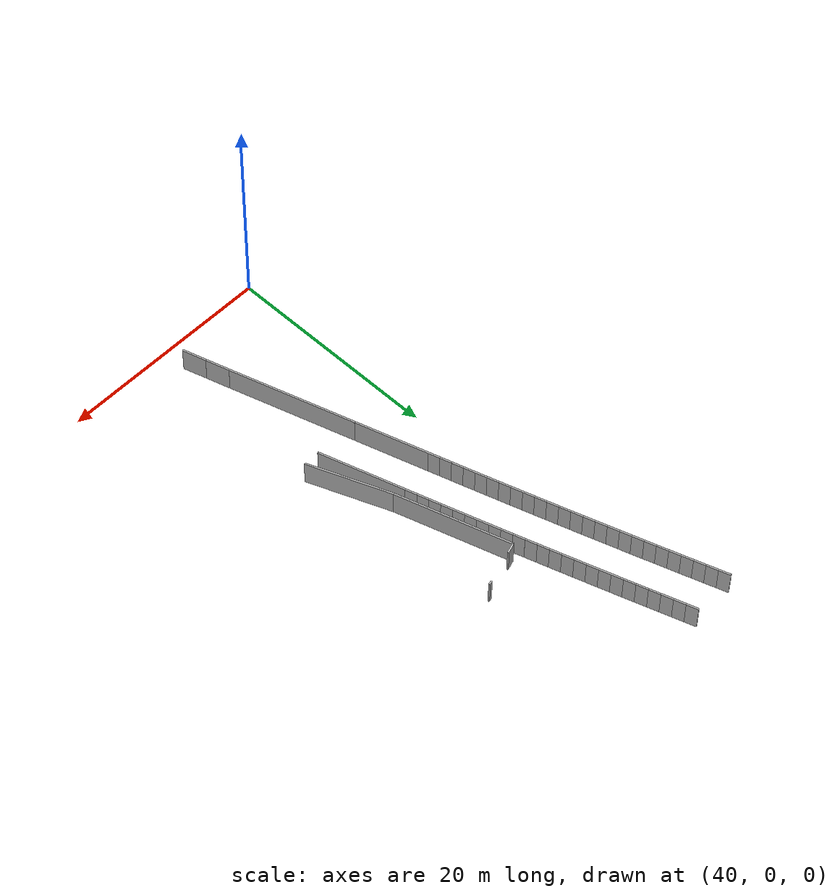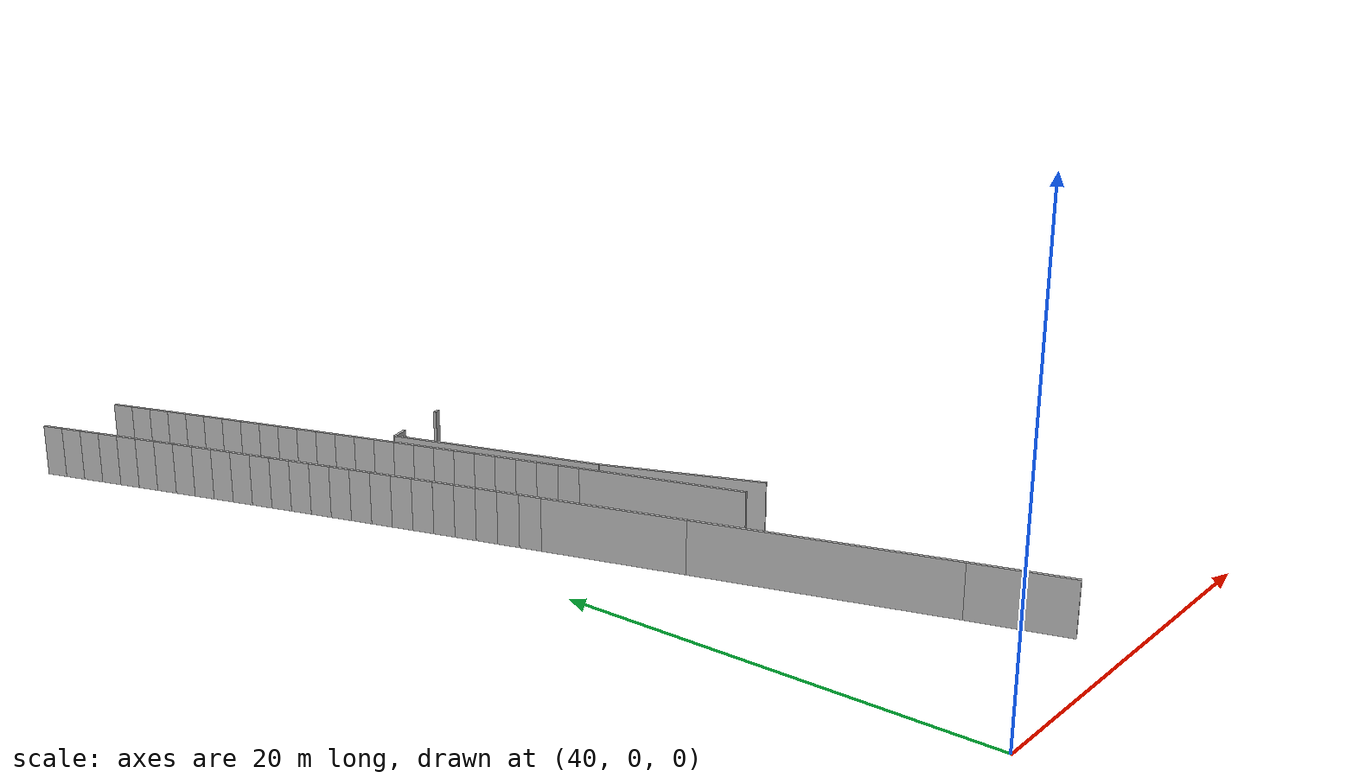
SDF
<?xml version="1.0" ?>
<sdf version="1.6">
  <model name="sps_4530">
    <pose frame="">0 0 0 0 -0 0</pose>
    <static>1</static>
    <self_collide>0</self_collide>
    <allow_auto_disable>0</allow_auto_disable>
    <link name="Wall153">
      <kinematic>0</kinematic>
      <gravity>1</gravity>
      <self_collide>0</self_collide>
      <collision name="collision">
        <geometry>
          <box>
            <size>0.94426 0.15 2.5</size>
          </box>
        </geometry>
        <pose frame="">0 0 0 0 -0 0</pose>
      </collision>
      <visual name="visual">
        <geometry>
          <box>
            <size>0.94426 0.15 2.5</size>
          </box>
        </geometry>
        <pose frame="">0 0 0 0 -0 0</pose>
        <cast_shadows>1</cast_shadows>
        <transparency>0.0</transparency>
      </visual>
      <pose frame="">45.4233 35.6831 1.25 0 -0 0.298855</pose>
    </link>
    <link name="Wall154">
      <kinematic>0</kinematic>
      <gravity>1</gravity>
      <self_collide>0</self_collide>
      <collision name="collision">
        <geometry>
          <box>
            <size>11.8573 0.15 2.5</size>
          </box>
        </geometry>
        <pose frame="">0 0 0 0 -0 0</pose>
      </collision>
      <visual name="visual">
        <geometry>
          <box>
            <size>11.8573 0.15 2.5</size>
          </box>
        </geometry>
        <pose frame="">0 0 0 0 -0 0</pose>
        <cast_shadows>1</cast_shadows>
        <transparency>0.0</transparency>
      </visual>
      <pose frame="">46.9025 12.2199 1.25 0 -0 1.86542</pose>
    </link>
    <link name="Wall155">
      <kinematic>0</kinematic>
      <gravity>1</gravity>
      <self_collide>0</self_collide>
      <collision name="collision">
        <geometry>
          <box>
            <size>6.81214 0.15 2.5</size>
          </box>
        </geometry>
        <pose frame="">0 0 0 0 -0 0</pose>
      </collision>
      <visual name="visual">
        <geometry>
          <box>
            <size>6.81214 0.15 2.5</size>
          </box>
        </geometry>
        <pose frame="">0 0 0 0 -0 0</pose>
        <cast_shadows>1</cast_shadows>
        <transparency>0.0</transparency>
      </visual>
      <pose frame="">44.1919 21.1524 1.25 0 -0 1.86542</pose>
    </link>
    <link name="Wall259">
      <kinematic>0</kinematic>
      <gravity>1</gravity>
      <self_collide>0</self_collide>
      <collision name="collision">
        <geometry>
          <box>
            <size>10.7821 0.15 2.5</size>
          </box>
        </geometry>
        <pose frame="">0 0 0 0 -0 0</pose>
      </collision>
      <visual name="visual">
        <geometry>
          <box>
            <size>10.7821 0.15 2.5</size>
          </box>
        </geometry>
        <pose frame="">0 0 0 0 -0 0</pose>
        <cast_shadows>1</cast_shadows>
        <transparency>0.0</transparency>
      </visual>
      <pose frame="">46.557 30.3913 1.25 0 0 -1.2724</pose>
    </link>
    <link name="Wall581">
      <kinematic>0</kinematic>
      <gravity>1</gravity>
      <self_collide>0</self_collide>
      <collision name="collision">
        <geometry>
          <box>
            <size>0.371875 0.15 2.5</size>
          </box>
        </geometry>
        <pose frame="">0 0 0 0 -0 0</pose>
      </collision>
      <visual name="visual">
        <geometry>
          <box>
            <size>0.371875 0.15 2.5</size>
          </box>
        </geometry>
        <pose frame="">0 0 0 0 -0 0</pose>
        <cast_shadows>1</cast_shadows>
        <transparency>0.0</transparency>
      </visual>
      <pose frame="">48.9997 36.7832 1.25 0 -0 0.298704</pose>
    </link>
    <link name="Wall582">
      <kinematic>0</kinematic>
      <gravity>1</gravity>
      <self_collide>0</self_collide>
      <collision name="collision">
        <geometry>
          <box>
            <size>8.06476 0.15 2.5</size>
          </box>
        </geometry>
        <pose frame="">0 0 0 0 -0 0</pose>
      </collision>
      <visual name="visual">
        <geometry>
          <box>
            <size>8.06476 0.15 2.5</size>
          </box>
        </geometry>
        <pose frame="">0 0 0 0 -0 0</pose>
        <cast_shadows>1</cast_shadows>
        <transparency>0.0</transparency>
      </visual>
      <pose frame="">48.3365 21.7518 1.25 0 0 -1.27624</pose>
    </link>
    <link name="Wall661">
      <kinematic>0</kinematic>
      <gravity>1</gravity>
      <self_collide>0</self_collide>
      <collision name="collision">
        <geometry>
          <box>
            <size>7.90182 0.15 2.5</size>
          </box>
        </geometry>
        <pose frame="">0 0 0 0 -0 0</pose>
      </collision>
      <visual name="visual">
        <geometry>
          <box>
            <size>7.90182 0.15 2.5</size>
          </box>
        </geometry>
        <pose frame="">0 0 0 0 -0 0</pose>
        <cast_shadows>1</cast_shadows>
        <transparency>0.0</transparency>
      </visual>
      <pose frame="">49.5982 21.5658 1.25 0 0 -1.19328</pose>
    </link>
    <link name="Wall6393">
      <kinematic>0</kinematic>
      <gravity>1</gravity>
      <self_collide>0</self_collide>
      <collision name="collision">
        <geometry>
          <box>
            <size>2.24457 0.15 2.5</size>
          </box>
        </geometry>
        <pose frame="">0 0 0 0 -0 0</pose>
      </collision>
      <visual name="visual">
        <geometry>
          <box>
            <size>2.24457 0.15 2.5</size>
          </box>
        </geometry>
        <pose frame="">0 0 0 0 -0 0</pose>
        <cast_shadows>1</cast_shadows>
        <transparency>0.0</transparency>
      </visual>
      <pose frame="">49.5833 3.31898 1.25 0 -0 1.85808</pose>
    </link>
    <link name="Wall6394">
      <kinematic>0</kinematic>
      <gravity>1</gravity>
      <self_collide>0</self_collide>
      <collision name="collision">
        <geometry>
          <box>
            <size>2.24496 0.15 2.5</size>
          </box>
        </geometry>
        <pose frame="">0 0 0 0 -0 0</pose>
      </collision>
      <visual name="visual">
        <geometry>
          <box>
            <size>2.24496 0.15 2.5</size>
          </box>
        </geometry>
        <pose frame="">0 0 0 0 -0 0</pose>
        <cast_shadows>1</cast_shadows>
        <transparency>0.0</transparency>
      </visual>
      <pose frame="">48.9447 5.47099 1.25 0 -0 1.86046</pose>
    </link>
    <link name="Wall8200">
      <kinematic>0</kinematic>
      <gravity>1</gravity>
      <self_collide>0</self_collide>
      <collision name="collision">
        <geometry>
          <box>
            <size>1.08068 0.15 2.5</size>
          </box>
        </geometry>
        <pose frame="">0 0 0 0 -0 0</pose>
      </collision>
      <visual name="visual">
        <geometry>
          <box>
            <size>1.08068 0.15 2.5</size>
          </box>
        </geometry>
        <pose frame="">0 0 0 0 -0 0</pose>
        <cast_shadows>1</cast_shadows>
        <transparency>0.0</transparency>
      </visual>
      <pose frame="">47.0091 26.1276 1.25 0 -0 1.86522</pose>
    </link>
    <link name="Wall8201">
      <kinematic>0</kinematic>
      <gravity>1</gravity>
      <self_collide>0</self_collide>
      <collision name="collision">
        <geometry>
          <box>
            <size>1.08069 0.15 2.5</size>
          </box>
        </geometry>
        <pose frame="">0 0 0 0 -0 0</pose>
      </collision>
      <visual name="visual">
        <geometry>
          <box>
            <size>1.08069 0.15 2.5</size>
          </box>
        </geometry>
        <pose frame="">0 0 0 0 -0 0</pose>
        <cast_shadows>1</cast_shadows>
        <transparency>0.0</transparency>
      </visual>
      <pose frame="">46.6948 27.1616 1.25 0 -0 1.8664</pose>
    </link>
    <link name="Wall8202">
      <kinematic>0</kinematic>
      <gravity>1</gravity>
      <self_collide>0</self_collide>
      <collision name="collision">
        <geometry>
          <box>
            <size>1.08062 0.15 2.5</size>
          </box>
        </geometry>
        <pose frame="">0 0 0 0 -0 0</pose>
      </collision>
      <visual name="visual">
        <geometry>
          <box>
            <size>1.08062 0.15 2.5</size>
          </box>
        </geometry>
        <pose frame="">0 0 0 0 -0 0</pose>
        <cast_shadows>1</cast_shadows>
        <transparency>0.0</transparency>
      </visual>
      <pose frame="">46.3794 28.1952 1.25 0 -0 1.86754</pose>
    </link>
    <link name="Wall8203">
      <kinematic>0</kinematic>
      <gravity>1</gravity>
      <self_collide>0</self_collide>
      <collision name="collision">
        <geometry>
          <box>
            <size>1.08074 0.15 2.5</size>
          </box>
        </geometry>
        <pose frame="">0 0 0 0 -0 0</pose>
      </collision>
      <visual name="visual">
        <geometry>
          <box>
            <size>1.08074 0.15 2.5</size>
          </box>
        </geometry>
        <pose frame="">0 0 0 0 -0 0</pose>
        <cast_shadows>1</cast_shadows>
        <transparency>0.0</transparency>
      </visual>
      <pose frame="">46.0629 29.2285 1.25 0 -0 1.86851</pose>
    </link>
    <link name="Wall8204">
      <kinematic>0</kinematic>
      <gravity>1</gravity>
      <self_collide>0</self_collide>
      <collision name="collision">
        <geometry>
          <box>
            <size>1.08074 0.15 2.5</size>
          </box>
        </geometry>
        <pose frame="">0 0 0 0 -0 0</pose>
      </collision>
      <visual name="visual">
        <geometry>
          <box>
            <size>1.08074 0.15 2.5</size>
          </box>
        </geometry>
        <pose frame="">0 0 0 0 -0 0</pose>
        <cast_shadows>1</cast_shadows>
        <transparency>0.0</transparency>
      </visual>
      <pose frame="">45.7454 30.2615 1.25 0 -0 1.86963</pose>
    </link>
    <link name="Wall8205">
      <kinematic>0</kinematic>
      <gravity>1</gravity>
      <self_collide>0</self_collide>
      <collision name="collision">
        <geometry>
          <box>
            <size>1.08063 0.15 2.5</size>
          </box>
        </geometry>
        <pose frame="">0 0 0 0 -0 0</pose>
      </collision>
      <visual name="visual">
        <geometry>
          <box>
            <size>1.08063 0.15 2.5</size>
          </box>
        </geometry>
        <pose frame="">0 0 0 0 -0 0</pose>
        <cast_shadows>1</cast_shadows>
        <transparency>0.0</transparency>
      </visual>
      <pose frame="">45.4267 31.2941 1.25 0 -0 1.87067</pose>
    </link>
    <link name="Wall8206">
      <kinematic>0</kinematic>
      <gravity>1</gravity>
      <self_collide>0</self_collide>
      <collision name="collision">
        <geometry>
          <box>
            <size>1.08064 0.15 2.5</size>
          </box>
        </geometry>
        <pose frame="">0 0 0 0 -0 0</pose>
      </collision>
      <visual name="visual">
        <geometry>
          <box>
            <size>1.08064 0.15 2.5</size>
          </box>
        </geometry>
        <pose frame="">0 0 0 0 -0 0</pose>
        <cast_shadows>1</cast_shadows>
        <transparency>0.0</transparency>
      </visual>
      <pose frame="">45.1067 32.3263 1.25 0 -0 1.87202</pose>
    </link>
    <link name="Wall8207">
      <kinematic>0</kinematic>
      <gravity>1</gravity>
      <self_collide>0</self_collide>
      <collision name="collision">
        <geometry>
          <box>
            <size>1.08076 0.15 2.5</size>
          </box>
        </geometry>
        <pose frame="">0 0 0 0 -0 0</pose>
      </collision>
      <visual name="visual">
        <geometry>
          <box>
            <size>1.08076 0.15 2.5</size>
          </box>
        </geometry>
        <pose frame="">0 0 0 0 -0 0</pose>
        <cast_shadows>1</cast_shadows>
        <transparency>0.0</transparency>
      </visual>
      <pose frame="">44.7856 33.3582 1.25 0 -0 1.87294</pose>
    </link>
    <link name="Wall8208">
      <kinematic>0</kinematic>
      <gravity>1</gravity>
      <self_collide>0</self_collide>
      <collision name="collision">
        <geometry>
          <box>
            <size>1.08077 0.15 2.5</size>
          </box>
        </geometry>
        <pose frame="">0 0 0 0 -0 0</pose>
      </collision>
      <visual name="visual">
        <geometry>
          <box>
            <size>1.08077 0.15 2.5</size>
          </box>
        </geometry>
        <pose frame="">0 0 0 0 -0 0</pose>
        <cast_shadows>1</cast_shadows>
        <transparency>0.0</transparency>
      </visual>
      <pose frame="">44.4633 34.3898 1.25 0 -0 1.87429</pose>
    </link>
    <link name="Wall8209">
      <kinematic>0</kinematic>
      <gravity>1</gravity>
      <self_collide>0</self_collide>
      <collision name="collision">
        <geometry>
          <box>
            <size>1.08071 0.15 2.5</size>
          </box>
        </geometry>
        <pose frame="">0 0 0 0 -0 0</pose>
      </collision>
      <visual name="visual">
        <geometry>
          <box>
            <size>1.08071 0.15 2.5</size>
          </box>
        </geometry>
        <pose frame="">0 0 0 0 -0 0</pose>
        <cast_shadows>1</cast_shadows>
        <transparency>0.0</transparency>
      </visual>
      <pose frame="">44.1399 35.421 1.25 0 -0 1.87526</pose>
    </link>
    <link name="Wall8210">
      <kinematic>0</kinematic>
      <gravity>1</gravity>
      <self_collide>0</self_collide>
      <collision name="collision">
        <geometry>
          <box>
            <size>1.08073 0.15 2.5</size>
          </box>
        </geometry>
        <pose frame="">0 0 0 0 -0 0</pose>
      </collision>
      <visual name="visual">
        <geometry>
          <box>
            <size>1.08073 0.15 2.5</size>
          </box>
        </geometry>
        <pose frame="">0 0 0 0 -0 0</pose>
        <cast_shadows>1</cast_shadows>
        <transparency>0.0</transparency>
      </visual>
      <pose frame="">43.8153 36.4518 1.25 0 -0 1.87644</pose>
    </link>
    <link name="Wall8211">
      <kinematic>0</kinematic>
      <gravity>1</gravity>
      <self_collide>0</self_collide>
      <collision name="collision">
        <geometry>
          <box>
            <size>1.08063 0.15 2.5</size>
          </box>
        </geometry>
        <pose frame="">0 0 0 0 -0 0</pose>
      </collision>
      <visual name="visual">
        <geometry>
          <box>
            <size>1.08063 0.15 2.5</size>
          </box>
        </geometry>
        <pose frame="">0 0 0 0 -0 0</pose>
        <cast_shadows>1</cast_shadows>
        <transparency>0.0</transparency>
      </visual>
      <pose frame="">43.4895 37.4822 1.25 0 -0 1.87765</pose>
    </link>
    <link name="Wall8212">
      <kinematic>0</kinematic>
      <gravity>1</gravity>
      <self_collide>0</self_collide>
      <collision name="collision">
        <geometry>
          <box>
            <size>1.08069 0.15 2.5</size>
          </box>
        </geometry>
        <pose frame="">0 0 0 0 -0 0</pose>
      </collision>
      <visual name="visual">
        <geometry>
          <box>
            <size>1.08069 0.15 2.5</size>
          </box>
        </geometry>
        <pose frame="">0 0 0 0 -0 0</pose>
        <cast_shadows>1</cast_shadows>
        <transparency>0.0</transparency>
      </visual>
      <pose frame="">43.1625 38.5122 1.25 0 -0 1.87876</pose>
    </link>
    <link name="Wall8213">
      <kinematic>0</kinematic>
      <gravity>1</gravity>
      <self_collide>0</self_collide>
      <collision name="collision">
        <geometry>
          <box>
            <size>1.08083 0.15 2.5</size>
          </box>
        </geometry>
        <pose frame="">0 0 0 0 -0 0</pose>
      </collision>
      <visual name="visual">
        <geometry>
          <box>
            <size>1.08083 0.15 2.5</size>
          </box>
        </geometry>
        <pose frame="">0 0 0 0 -0 0</pose>
        <cast_shadows>1</cast_shadows>
        <transparency>0.0</transparency>
      </visual>
      <pose frame="">42.8343 39.5419 1.25 0 -0 1.8799</pose>
    </link>
    <link name="Wall8214">
      <kinematic>0</kinematic>
      <gravity>1</gravity>
      <self_collide>0</self_collide>
      <collision name="collision">
        <geometry>
          <box>
            <size>1.08079 0.15 2.5</size>
          </box>
        </geometry>
        <pose frame="">0 0 0 0 -0 0</pose>
      </collision>
      <visual name="visual">
        <geometry>
          <box>
            <size>1.08079 0.15 2.5</size>
          </box>
        </geometry>
        <pose frame="">0 0 0 0 -0 0</pose>
        <cast_shadows>1</cast_shadows>
        <transparency>0.0</transparency>
      </visual>
      <pose frame="">42.5049 40.5713 1.25 0 -0 1.8811</pose>
    </link>
    <link name="Wall8215">
      <kinematic>0</kinematic>
      <gravity>1</gravity>
      <self_collide>0</self_collide>
      <collision name="collision">
        <geometry>
          <box>
            <size>1.08057 0.15 2.5</size>
          </box>
        </geometry>
        <pose frame="">0 0 0 0 -0 0</pose>
      </collision>
      <visual name="visual">
        <geometry>
          <box>
            <size>1.08057 0.15 2.5</size>
          </box>
        </geometry>
        <pose frame="">0 0 0 0 -0 0</pose>
        <cast_shadows>1</cast_shadows>
        <transparency>0.0</transparency>
      </visual>
      <pose frame="">42.1744 41.6002 1.25 0 -0 1.88212</pose>
    </link>
    <link name="Wall8216">
      <kinematic>0</kinematic>
      <gravity>1</gravity>
      <self_collide>0</self_collide>
      <collision name="collision">
        <geometry>
          <box>
            <size>1.08077 0.15 2.5</size>
          </box>
        </geometry>
        <pose frame="">0 0 0 0 -0 0</pose>
      </collision>
      <visual name="visual">
        <geometry>
          <box>
            <size>1.08077 0.15 2.5</size>
          </box>
        </geometry>
        <pose frame="">0 0 0 0 -0 0</pose>
        <cast_shadows>1</cast_shadows>
        <transparency>0.0</transparency>
      </visual>
      <pose frame="">41.8427 42.6287 1.25 0 -0 1.88342</pose>
    </link>
    <link name="Wall8217">
      <kinematic>0</kinematic>
      <gravity>1</gravity>
      <self_collide>0</self_collide>
      <collision name="collision">
        <geometry>
          <box>
            <size>1.08051 0.15 2.5</size>
          </box>
        </geometry>
        <pose frame="">0 0 0 0 -0 0</pose>
      </collision>
      <visual name="visual">
        <geometry>
          <box>
            <size>1.08051 0.15 2.5</size>
          </box>
        </geometry>
        <pose frame="">0 0 0 0 -0 0</pose>
        <cast_shadows>1</cast_shadows>
        <transparency>0.0</transparency>
      </visual>
      <pose frame="">41.5098 43.6568 1.25 0 -0 1.88451</pose>
    </link>
    <link name="Wall8218">
      <kinematic>0</kinematic>
      <gravity>1</gravity>
      <self_collide>0</self_collide>
      <collision name="collision">
        <geometry>
          <box>
            <size>1.08075 0.15 2.5</size>
          </box>
        </geometry>
        <pose frame="">0 0 0 0 -0 0</pose>
      </collision>
      <visual name="visual">
        <geometry>
          <box>
            <size>1.08075 0.15 2.5</size>
          </box>
        </geometry>
        <pose frame="">0 0 0 0 -0 0</pose>
        <cast_shadows>1</cast_shadows>
        <transparency>0.0</transparency>
      </visual>
      <pose frame="">41.1757 44.6845 1.25 0 -0 1.88556</pose>
    </link>
    <link name="Wall8219">
      <kinematic>0</kinematic>
      <gravity>1</gravity>
      <self_collide>0</self_collide>
      <collision name="collision">
        <geometry>
          <box>
            <size>1.08066 0.15 2.5</size>
          </box>
        </geometry>
        <pose frame="">0 0 0 0 -0 0</pose>
      </collision>
      <visual name="visual">
        <geometry>
          <box>
            <size>1.08066 0.15 2.5</size>
          </box>
        </geometry>
        <pose frame="">0 0 0 0 -0 0</pose>
        <cast_shadows>1</cast_shadows>
        <transparency>0.0</transparency>
      </visual>
      <pose frame="">40.8405 45.7119 1.25 0 -0 1.88678</pose>
    </link>
    <link name="Wall8220">
      <kinematic>0</kinematic>
      <gravity>1</gravity>
      <self_collide>0</self_collide>
      <collision name="collision">
        <geometry>
          <box>
            <size>1.08062 0.15 2.5</size>
          </box>
        </geometry>
        <pose frame="">0 0 0 0 -0 0</pose>
      </collision>
      <visual name="visual">
        <geometry>
          <box>
            <size>1.08062 0.15 2.5</size>
          </box>
        </geometry>
        <pose frame="">0 0 0 0 -0 0</pose>
        <cast_shadows>1</cast_shadows>
        <transparency>0.0</transparency>
      </visual>
      <pose frame="">40.5042 46.7389 1.25 0 -0 1.88774</pose>
    </link>
    <link name="Wall8221">
      <kinematic>0</kinematic>
      <gravity>1</gravity>
      <self_collide>0</self_collide>
      <collision name="collision">
        <geometry>
          <box>
            <size>1.08088 0.15 2.5</size>
          </box>
        </geometry>
        <pose frame="">0 0 0 0 -0 0</pose>
      </collision>
      <visual name="visual">
        <geometry>
          <box>
            <size>1.08088 0.15 2.5</size>
          </box>
        </geometry>
        <pose frame="">0 0 0 0 -0 0</pose>
        <cast_shadows>1</cast_shadows>
        <transparency>0.0</transparency>
      </visual>
      <pose frame="">40.1667 47.7656 1.25 0 -0 1.88903</pose>
    </link>
    <link name="Wall8222">
      <kinematic>0</kinematic>
      <gravity>1</gravity>
      <self_collide>0</self_collide>
      <collision name="collision">
        <geometry>
          <box>
            <size>1.08051 0.15 2.5</size>
          </box>
        </geometry>
        <pose frame="">0 0 0 0 -0 0</pose>
      </collision>
      <visual name="visual">
        <geometry>
          <box>
            <size>1.08051 0.15 2.5</size>
          </box>
        </geometry>
        <pose frame="">0 0 0 0 -0 0</pose>
        <cast_shadows>1</cast_shadows>
        <transparency>0.0</transparency>
      </visual>
      <pose frame="">39.8279 48.7918 1.25 0 -0 1.89033</pose>
    </link>
    <link name="Wall8223">
      <kinematic>0</kinematic>
      <gravity>1</gravity>
      <self_collide>0</self_collide>
      <collision name="collision">
        <geometry>
          <box>
            <size>1.08059 0.15 2.5</size>
          </box>
        </geometry>
        <pose frame="">0 0 0 0 -0 0</pose>
      </collision>
      <visual name="visual">
        <geometry>
          <box>
            <size>1.08059 0.15 2.5</size>
          </box>
        </geometry>
        <pose frame="">0 0 0 0 -0 0</pose>
        <cast_shadows>1</cast_shadows>
        <transparency>0.0</transparency>
      </visual>
      <pose frame="">39.488 49.8175 1.25 0 -0 1.89126</pose>
    </link>
    <link name="Wall9111">
      <kinematic>0</kinematic>
      <gravity>1</gravity>
      <self_collide>0</self_collide>
      <collision name="collision">
        <geometry>
          <box>
            <size>1.07602 0.15 2.5</size>
          </box>
        </geometry>
        <pose frame="">0 0 0 0 -0 0</pose>
      </collision>
      <visual name="visual">
        <geometry>
          <box>
            <size>1.07602 0.15 2.5</size>
          </box>
        </geometry>
        <pose frame="">0 0 0 0 -0 0</pose>
        <cast_shadows>1</cast_shadows>
        <transparency>0.0</transparency>
      </visual>
      <pose frame="">43.0468 24.9266 1.25 0 -0 1.86499</pose>
    </link>
    <link name="Wall9112">
      <kinematic>0</kinematic>
      <gravity>1</gravity>
      <self_collide>0</self_collide>
      <collision name="collision">
        <geometry>
          <box>
            <size>1.07606 0.15 2.5</size>
          </box>
        </geometry>
        <pose frame="">0 0 0 0 -0 0</pose>
      </collision>
      <visual name="visual">
        <geometry>
          <box>
            <size>1.07606 0.15 2.5</size>
          </box>
        </geometry>
        <pose frame="">0 0 0 0 -0 0</pose>
        <cast_shadows>1</cast_shadows>
        <transparency>0.0</transparency>
      </visual>
      <pose frame="">42.7342 25.9562 1.25 0 -0 1.86628</pose>
    </link>
    <link name="Wall9113">
      <kinematic>0</kinematic>
      <gravity>1</gravity>
      <self_collide>0</self_collide>
      <collision name="collision">
        <geometry>
          <box>
            <size>1.07595 0.15 2.5</size>
          </box>
        </geometry>
        <pose frame="">0 0 0 0 -0 0</pose>
      </collision>
      <visual name="visual">
        <geometry>
          <box>
            <size>1.07595 0.15 2.5</size>
          </box>
        </geometry>
        <pose frame="">0 0 0 0 -0 0</pose>
        <cast_shadows>1</cast_shadows>
        <transparency>0.0</transparency>
      </visual>
      <pose frame="">42.4203 26.9854 1.25 0 -0 1.86732</pose>
    </link>
    <link name="Wall9114">
      <kinematic>0</kinematic>
      <gravity>1</gravity>
      <self_collide>0</self_collide>
      <collision name="collision">
        <geometry>
          <box>
            <size>1.07596 0.15 2.5</size>
          </box>
        </geometry>
        <pose frame="">0 0 0 0 -0 0</pose>
      </collision>
      <visual name="visual">
        <geometry>
          <box>
            <size>1.07596 0.15 2.5</size>
          </box>
        </geometry>
        <pose frame="">0 0 0 0 -0 0</pose>
        <cast_shadows>1</cast_shadows>
        <transparency>0.0</transparency>
      </visual>
      <pose frame="">42.1053 28.0142 1.25 0 -0 1.86851</pose>
    </link>
    <link name="Wall9115">
      <kinematic>0</kinematic>
      <gravity>1</gravity>
      <self_collide>0</self_collide>
      <collision name="collision">
        <geometry>
          <box>
            <size>1.07591 0.15 2.5</size>
          </box>
        </geometry>
        <pose frame="">0 0 0 0 -0 0</pose>
      </collision>
      <visual name="visual">
        <geometry>
          <box>
            <size>1.07591 0.15 2.5</size>
          </box>
        </geometry>
        <pose frame="">0 0 0 0 -0 0</pose>
        <cast_shadows>1</cast_shadows>
        <transparency>0.0</transparency>
      </visual>
      <pose frame="">41.7891 29.0426 1.25 0 -0 1.86971</pose>
    </link>
    <link name="Wall9116">
      <kinematic>0</kinematic>
      <gravity>1</gravity>
      <self_collide>0</self_collide>
      <collision name="collision">
        <geometry>
          <box>
            <size>1.07602 0.15 2.5</size>
          </box>
        </geometry>
        <pose frame="">0 0 0 0 -0 0</pose>
      </collision>
      <visual name="visual">
        <geometry>
          <box>
            <size>1.07602 0.15 2.5</size>
          </box>
        </geometry>
        <pose frame="">0 0 0 0 -0 0</pose>
        <cast_shadows>1</cast_shadows>
        <transparency>0.0</transparency>
      </visual>
      <pose frame="">41.4716 30.0707 1.25 0 -0 1.8708</pose>
    </link>
    <link name="Wall9117">
      <kinematic>0</kinematic>
      <gravity>1</gravity>
      <self_collide>0</self_collide>
      <collision name="collision">
        <geometry>
          <box>
            <size>1.07578 0.15 2.5</size>
          </box>
        </geometry>
        <pose frame="">0 0 0 0 -0 0</pose>
      </collision>
      <visual name="visual">
        <geometry>
          <box>
            <size>1.07578 0.15 2.5</size>
          </box>
        </geometry>
        <pose frame="">0 0 0 0 -0 0</pose>
        <cast_shadows>1</cast_shadows>
        <transparency>0.0</transparency>
      </visual>
      <pose frame="">41.1532 31.0984 1.25 0 -0 1.87182</pose>
    </link>
    <link name="Wall9118">
      <kinematic>0</kinematic>
      <gravity>1</gravity>
      <self_collide>0</self_collide>
      <collision name="collision">
        <geometry>
          <box>
            <size>1.07604 0.15 2.5</size>
          </box>
        </geometry>
        <pose frame="">0 0 0 0 -0 0</pose>
      </collision>
      <visual name="visual">
        <geometry>
          <box>
            <size>1.07604 0.15 2.5</size>
          </box>
        </geometry>
        <pose frame="">0 0 0 0 -0 0</pose>
        <cast_shadows>1</cast_shadows>
        <transparency>0.0</transparency>
      </visual>
      <pose frame="">40.8335 32.1257 1.25 0 -0 1.87317</pose>
    </link>
    <link name="Wall9119">
      <kinematic>0</kinematic>
      <gravity>1</gravity>
      <self_collide>0</self_collide>
      <collision name="collision">
        <geometry>
          <box>
            <size>1.07592 0.15 2.5</size>
          </box>
        </geometry>
        <pose frame="">0 0 0 0 -0 0</pose>
      </collision>
      <visual name="visual">
        <geometry>
          <box>
            <size>1.07592 0.15 2.5</size>
          </box>
        </geometry>
        <pose frame="">0 0 0 0 -0 0</pose>
        <cast_shadows>1</cast_shadows>
        <transparency>0.0</transparency>
      </visual>
      <pose frame="">40.5125 33.1527 1.25 0 -0 1.87416</pose>
    </link>
    <link name="Wall9120">
      <kinematic>0</kinematic>
      <gravity>1</gravity>
      <self_collide>0</self_collide>
      <collision name="collision">
        <geometry>
          <box>
            <size>1.07615 0.15 2.5</size>
          </box>
        </geometry>
        <pose frame="">0 0 0 0 -0 0</pose>
      </collision>
      <visual name="visual">
        <geometry>
          <box>
            <size>1.07615 0.15 2.5</size>
          </box>
        </geometry>
        <pose frame="">0 0 0 0 -0 0</pose>
        <cast_shadows>1</cast_shadows>
        <transparency>0.0</transparency>
      </visual>
      <pose frame="">40.1905 34.1794 1.25 0 -0 1.8754</pose>
    </link>
    <link name="Wall9121">
      <kinematic>0</kinematic>
      <gravity>1</gravity>
      <self_collide>0</self_collide>
      <collision name="collision">
        <geometry>
          <box>
            <size>1.07606 0.15 2.5</size>
          </box>
        </geometry>
        <pose frame="">0 0 0 0 -0 0</pose>
      </collision>
      <visual name="visual">
        <geometry>
          <box>
            <size>1.07606 0.15 2.5</size>
          </box>
        </geometry>
        <pose frame="">0 0 0 0 -0 0</pose>
        <cast_shadows>1</cast_shadows>
        <transparency>0.0</transparency>
      </visual>
      <pose frame="">39.8672 35.2058 1.25 0 -0 1.87644</pose>
    </link>
    <link name="Wall9122">
      <kinematic>0</kinematic>
      <gravity>1</gravity>
      <self_collide>0</self_collide>
      <collision name="collision">
        <geometry>
          <box>
            <size>1.07602 0.15 2.5</size>
          </box>
        </geometry>
        <pose frame="">0 0 0 0 -0 0</pose>
      </collision>
      <visual name="visual">
        <geometry>
          <box>
            <size>1.07602 0.15 2.5</size>
          </box>
        </geometry>
        <pose frame="">0 0 0 0 -0 0</pose>
        <cast_shadows>1</cast_shadows>
        <transparency>0.0</transparency>
      </visual>
      <pose frame="">39.5429 36.2318 1.25 0 -0 1.87746</pose>
    </link>
    <link name="Wall9123">
      <kinematic>0</kinematic>
      <gravity>1</gravity>
      <self_collide>0</self_collide>
      <collision name="collision">
        <geometry>
          <box>
            <size>1.07592 0.15 2.5</size>
          </box>
        </geometry>
        <pose frame="">0 0 0 0 -0 0</pose>
      </collision>
      <visual name="visual">
        <geometry>
          <box>
            <size>1.07592 0.15 2.5</size>
          </box>
        </geometry>
        <pose frame="">0 0 0 0 -0 0</pose>
        <cast_shadows>1</cast_shadows>
        <transparency>0.0</transparency>
      </visual>
      <pose frame="">39.2172 37.2573 1.25 0 -0 1.87904</pose>
    </link>
    <link name="Wall9124">
      <kinematic>0</kinematic>
      <gravity>1</gravity>
      <self_collide>0</self_collide>
      <collision name="collision">
        <geometry>
          <box>
            <size>1.07593 0.15 2.5</size>
          </box>
        </geometry>
        <pose frame="">0 0 0 0 -0 0</pose>
      </collision>
      <visual name="visual">
        <geometry>
          <box>
            <size>1.07593 0.15 2.5</size>
          </box>
        </geometry>
        <pose frame="">0 0 0 0 -0 0</pose>
        <cast_shadows>1</cast_shadows>
        <transparency>0.0</transparency>
      </visual>
      <pose frame="">38.8904 38.2824 1.25 0 -0 1.87981</pose>
    </link>
    <link name="Wall9125">
      <kinematic>0</kinematic>
      <gravity>1</gravity>
      <self_collide>0</self_collide>
      <collision name="collision">
        <geometry>
          <box>
            <size>1.07606 0.15 2.5</size>
          </box>
        </geometry>
        <pose frame="">0 0 0 0 -0 0</pose>
      </collision>
      <visual name="visual">
        <geometry>
          <box>
            <size>1.07606 0.15 2.5</size>
          </box>
        </geometry>
        <pose frame="">0 0 0 0 -0 0</pose>
        <cast_shadows>1</cast_shadows>
        <transparency>0.0</transparency>
      </visual>
      <pose frame="">38.5624 39.3072 1.25 0 -0 1.88132</pose>
    </link>
    <link name="Wall9126">
      <kinematic>0</kinematic>
      <gravity>1</gravity>
      <self_collide>0</self_collide>
      <collision name="collision">
        <geometry>
          <box>
            <size>1.07595 0.15 2.5</size>
          </box>
        </geometry>
        <pose frame="">0 0 0 0 -0 0</pose>
      </collision>
      <visual name="visual">
        <geometry>
          <box>
            <size>1.07595 0.15 2.5</size>
          </box>
        </geometry>
        <pose frame="">0 0 0 0 -0 0</pose>
        <cast_shadows>1</cast_shadows>
        <transparency>0.0</transparency>
      </visual>
      <pose frame="">38.2332 40.3316 1.25 0 -0 1.88212</pose>
    </link>
    <link name="Wall9127">
      <kinematic>0</kinematic>
      <gravity>1</gravity>
      <self_collide>0</self_collide>
      <collision name="collision">
        <geometry>
          <box>
            <size>1.07592 0.15 2.5</size>
          </box>
        </geometry>
        <pose frame="">0 0 0 0 -0 0</pose>
      </collision>
      <visual name="visual">
        <geometry>
          <box>
            <size>1.07592 0.15 2.5</size>
          </box>
        </geometry>
        <pose frame="">0 0 0 0 -0 0</pose>
        <cast_shadows>1</cast_shadows>
        <transparency>0.0</transparency>
      </visual>
      <pose frame="">37.903 41.3556 1.25 0 -0 1.88333</pose>
    </link>
    <link name="Wall9128">
      <kinematic>0</kinematic>
      <gravity>1</gravity>
      <self_collide>0</self_collide>
      <collision name="collision">
        <geometry>
          <box>
            <size>1.07599 0.15 2.5</size>
          </box>
        </geometry>
        <pose frame="">0 0 0 0 -0 0</pose>
      </collision>
      <visual name="visual">
        <geometry>
          <box>
            <size>1.07599 0.15 2.5</size>
          </box>
        </geometry>
        <pose frame="">0 0 0 0 -0 0</pose>
        <cast_shadows>1</cast_shadows>
        <transparency>0.0</transparency>
      </visual>
      <pose frame="">37.5717 42.3793 1.25 0 -0 1.88426</pose>
    </link>
    <link name="Wall9129">
      <kinematic>0</kinematic>
      <gravity>1</gravity>
      <self_collide>0</self_collide>
      <collision name="collision">
        <geometry>
          <box>
            <size>1.0759 0.15 2.5</size>
          </box>
        </geometry>
        <pose frame="">0 0 0 0 -0 0</pose>
      </collision>
      <visual name="visual">
        <geometry>
          <box>
            <size>1.0759 0.15 2.5</size>
          </box>
        </geometry>
        <pose frame="">0 0 0 0 -0 0</pose>
        <cast_shadows>1</cast_shadows>
        <transparency>0.0</transparency>
      </visual>
      <pose frame="">37.2392 43.4026 1.25 0 -0 1.88566</pose>
    </link>
    <link name="Wall9130">
      <kinematic>0</kinematic>
      <gravity>1</gravity>
      <self_collide>0</self_collide>
      <collision name="collision">
        <geometry>
          <box>
            <size>1.07593 0.15 2.5</size>
          </box>
        </geometry>
        <pose frame="">0 0 0 0 -0 0</pose>
      </collision>
      <visual name="visual">
        <geometry>
          <box>
            <size>1.07593 0.15 2.5</size>
          </box>
        </geometry>
        <pose frame="">0 0 0 0 -0 0</pose>
        <cast_shadows>1</cast_shadows>
        <transparency>0.0</transparency>
      </visual>
      <pose frame="">36.9054 44.4254 1.25 0 -0 1.88684</pose>
    </link>
    <link name="Wall9131">
      <kinematic>0</kinematic>
      <gravity>1</gravity>
      <self_collide>0</self_collide>
      <collision name="collision">
        <geometry>
          <box>
            <size>1.07601 0.15 2.5</size>
          </box>
        </geometry>
        <pose frame="">0 0 0 0 -0 0</pose>
      </collision>
      <visual name="visual">
        <geometry>
          <box>
            <size>1.07601 0.15 2.5</size>
          </box>
        </geometry>
        <pose frame="">0 0 0 0 -0 0</pose>
        <cast_shadows>1</cast_shadows>
        <transparency>0.0</transparency>
      </visual>
      <pose frame="">36.5705 45.4479 1.25 0 -0 1.88778</pose>
    </link>
    <link name="Wall9132">
      <kinematic>0</kinematic>
      <gravity>1</gravity>
      <self_collide>0</self_collide>
      <collision name="collision">
        <geometry>
          <box>
            <size>1.07598 0.15 2.5</size>
          </box>
        </geometry>
        <pose frame="">0 0 0 0 -0 0</pose>
      </collision>
      <visual name="visual">
        <geometry>
          <box>
            <size>1.07598 0.15 2.5</size>
          </box>
        </geometry>
        <pose frame="">0 0 0 0 -0 0</pose>
        <cast_shadows>1</cast_shadows>
        <transparency>0.0</transparency>
      </visual>
      <pose frame="">36.2345 46.4701 1.25 0 -0 1.88898</pose>
    </link>
    <link name="Wall9133">
      <kinematic>0</kinematic>
      <gravity>1</gravity>
      <self_collide>0</self_collide>
      <collision name="collision">
        <geometry>
          <box>
            <size>1.076 0.15 2.5</size>
          </box>
        </geometry>
        <pose frame="">0 0 0 0 -0 0</pose>
      </collision>
      <visual name="visual">
        <geometry>
          <box>
            <size>1.076 0.15 2.5</size>
          </box>
        </geometry>
        <pose frame="">0 0 0 0 -0 0</pose>
        <cast_shadows>1</cast_shadows>
        <transparency>0.0</transparency>
      </visual>
      <pose frame="">35.8974 47.4919 1.25 0 -0 1.89011</pose>
    </link>
    <link name="Wall9134">
      <kinematic>0</kinematic>
      <gravity>1</gravity>
      <self_collide>0</self_collide>
      <collision name="collision">
        <geometry>
          <box>
            <size>1.07588 0.15 2.5</size>
          </box>
        </geometry>
        <pose frame="">0 0 0 0 -0 0</pose>
      </collision>
      <visual name="visual">
        <geometry>
          <box>
            <size>1.07588 0.15 2.5</size>
          </box>
        </geometry>
        <pose frame="">0 0 0 0 -0 0</pose>
        <cast_shadows>1</cast_shadows>
        <transparency>0.0</transparency>
      </visual>
      <pose frame="">35.5589 48.5132 1.25 0 -0 1.89158</pose>
    </link>
    <link name="Wall9135">
      <kinematic>0</kinematic>
      <gravity>1</gravity>
      <self_collide>0</self_collide>
      <collision name="collision">
        <geometry>
          <box>
            <size>1.07593 0.15 2.5</size>
          </box>
        </geometry>
        <pose frame="">0 0 0 0 -0 0</pose>
      </collision>
      <visual name="visual">
        <geometry>
          <box>
            <size>1.07593 0.15 2.5</size>
          </box>
        </geometry>
        <pose frame="">0 0 0 0 -0 0</pose>
        <cast_shadows>1</cast_shadows>
        <transparency>0.0</transparency>
      </visual>
      <pose frame="">35.2193 49.5341 1.25 0 -0 1.89228</pose>
    </link>
  </model>
</sdf>
